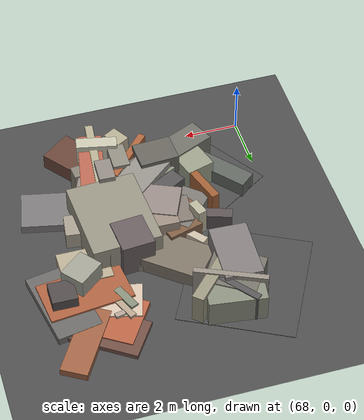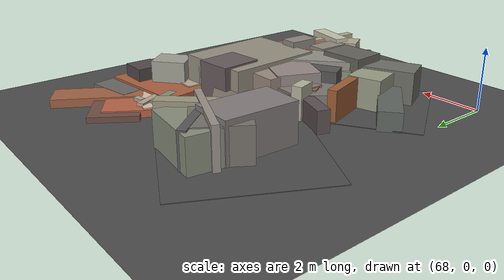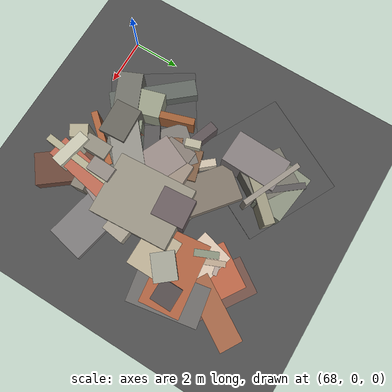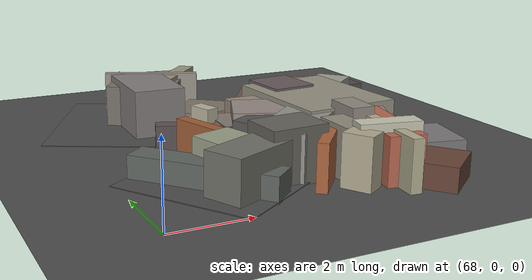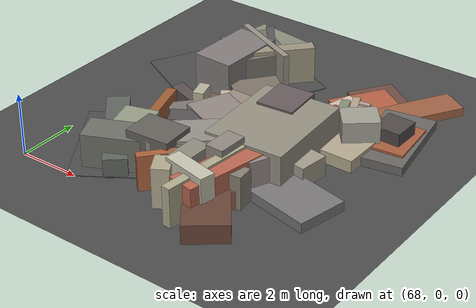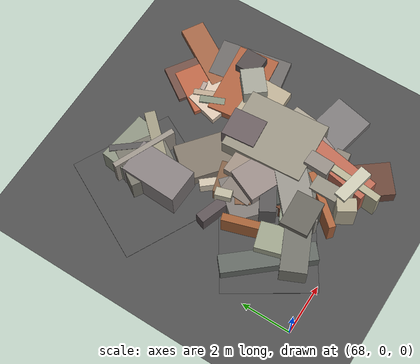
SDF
<sdf version="1.6">
 <world name="navitas_arena">
  <model name="ground_plane">
   <static>true</static>
   <link name="link">
    <collision name="collision">
     <geometry><plane><normal>0 0 1</normal><size>400 400</size></plane></geometry>
     <surface><friction><ode><mu>0.800</mu><mu2>0.800</mu2></ode></friction></surface>
    </collision>
    <visual name="visual">
     <cast_shadows>false</cast_shadows>
     <geometry><plane><normal>0 0 1</normal><size>400 400</size></plane></geometry>
     <material>
      <specular>0.04 0.04 0.04 1</specular>
      <script>
       <uri>file://media/materials/scripts/navitas_asphalt.material</uri>
       <name>Navitas/RealArenaAsphalt</name>
      </script>
     </material>
    </visual>
   </link>
  </model>
  <model name="road_zor_1_13">
   <static>true</static>
   <pose>70.612 2.500 0.040 0 0 2.140</pose>
   <link name="link">
    <collision name="col"><geometry><box><size>3.670 4.200 0.020</size></box></geometry></collision>
    <visual name="vis">
     <geometry><box><size>3.670 4.200 0.020</size></box></geometry>
     <material>
      <specular>0.04 0.04 0.04 1</specular>
      <script>
       <uri>file://media/materials/scripts/navitas_asphalt.material</uri>
       <name>Navitas/RealArenaAsphalt</name>
      </script>
     </material>
    </visual>
   </link>
  </model>
  <model name="road_zor_1_15">
   <static>true</static>
   <pose>70.080 7.566 0.040 0 0 1.093</pose>
   <link name="link">
    <collision name="col"><geometry><box><size>4.427 4.200 0.020</size></box></geometry></collision>
    <visual name="vis">
     <geometry><box><size>4.427 4.200 0.020</size></box></geometry>
     <material>
      <specular>0.04 0.04 0.04 1</specular>
      <script>
       <uri>file://media/materials/scripts/navitas_asphalt.material</uri>
       <name>Navitas/RealArenaAsphalt</name>
      </script>
     </material>
    </visual>
   </link>
  </model>
  <model name="blk_zor_1_2_0">
   <static>true</static>
   <pose>73.827 1.909 0.000 0 0 0</pose>
   <link name="link">
    <collision name="col_0">
     <pose>-0.726 0.303 0.378 0.000 0.000 1.106</pose>
     <geometry><box><size>0.576 0.401 0.756</size></box></geometry>
    </collision>
    <visual name="vis_0">
     <pose>-0.726 0.303 0.378 0.000 0.000 1.106</pose>
     <geometry><box><size>0.576 0.401 0.756</size></box></geometry>
     <material>
      <ambient>0.56 0.33 0.20 1</ambient>
      <diffuse>0.61 0.35 0.21 1</diffuse>
      <specular>0.05 0.05 0.045 1</specular>
     </material>
    </visual>
    <collision name="col_1">
     <pose>-0.059 0.319 0.734 0.000 0.000 -0.038</pose>
     <geometry><box><size>0.595 0.985 1.468</size></box></geometry>
    </collision>
    <visual name="vis_1">
     <pose>-0.059 0.319 0.734 0.000 0.000 -0.038</pose>
     <geometry><box><size>0.595 0.985 1.468</size></box></geometry>
     <material>
      <ambient>0.53 0.50 0.47 1</ambient>
      <diffuse>0.57 0.54 0.51 1</diffuse>
      <specular>0.05 0.05 0.045 1</specular>
     </material>
    </visual>
    <collision name="col_2">
     <pose>0.532 -0.220 0.495 0.000 0.000 -0.486</pose>
     <geometry><box><size>0.262 0.568 0.990</size></box></geometry>
    </collision>
    <visual name="vis_2">
     <pose>0.532 -0.220 0.495 0.000 0.000 -0.486</pose>
     <geometry><box><size>0.262 0.568 0.990</size></box></geometry>
     <material>
      <ambient>0.32 0.29 0.28 1</ambient>
      <diffuse>0.34 0.31 0.30 1</diffuse>
      <specular>0.05 0.05 0.045 1</specular>
     </material>
    </visual>
    <collision name="col_3">
     <pose>0.640 -0.385 0.286 0.000 0.000 0.891</pose>
     <geometry><box><size>0.583 0.529 0.572</size></box></geometry>
    </collision>
    <visual name="vis_3">
     <pose>0.640 -0.385 0.286 0.000 0.000 0.891</pose>
     <geometry><box><size>0.583 0.529 0.572</size></box></geometry>
     <material>
      <ambient>0.47 0.30 0.23 1</ambient>
      <diffuse>0.51 0.33 0.25 1</diffuse>
      <specular>0.05 0.05 0.045 1</specular>
     </material>
    </visual>
    <collision name="col_4">
     <pose>-0.120 -1.162 0.704 0.000 0.000 -0.210</pose>
     <geometry><box><size>1.509 0.487 1.408</size></box></geometry>
    </collision>
    <visual name="vis_4">
     <pose>-0.120 -1.162 0.704 0.000 0.000 -0.210</pose>
     <geometry><box><size>1.509 0.487 1.408</size></box></geometry>
     <material>
      <ambient>0.72 0.72 0.63 1</ambient>
      <diffuse>0.78 0.77 0.69 1</diffuse>
      <specular>0.05 0.05 0.045 1</specular>
     </material>
    </visual>
    <collision name="col_5">
     <pose>0.318 -0.171 0.593 0.000 0.000 1.379</pose>
     <geometry><box><size>3.248 0.887 1.186</size></box></geometry>
    </collision>
    <visual name="vis_5">
     <pose>0.318 -0.171 0.593 0.000 0.000 1.379</pose>
     <geometry><box><size>3.248 0.887 1.186</size></box></geometry>
     <material>
      <ambient>0.68 0.38 0.30 1</ambient>
      <diffuse>0.73 0.41 0.32 1</diffuse>
      <specular>0.05 0.05 0.045 1</specular>
     </material>
    </visual>
    <collision name="col_6">
     <pose>-1.061 -0.076 0.429 0.000 0.000 0.885</pose>
     <geometry><box><size>0.384 0.299 0.858</size></box></geometry>
    </collision>
    <visual name="vis_6">
     <pose>-1.061 -0.076 0.429 0.000 0.000 0.885</pose>
     <geometry><box><size>0.384 0.299 0.858</size></box></geometry>
     <material>
      <ambient>0.62 0.38 0.28 1</ambient>
      <diffuse>0.67 0.41 0.31 1</diffuse>
      <specular>0.05 0.05 0.045 1</specular>
     </material>
    </visual>
    <collision name="col_7">
     <pose>-0.821 0.701 0.402 0.000 0.000 -0.032</pose>
     <geometry><box><size>2.772 0.310 0.804</size></box></geometry>
    </collision>
    <visual name="vis_7">
     <pose>-0.821 0.701 0.402 0.000 0.000 -0.032</pose>
     <geometry><box><size>2.772 0.310 0.804</size></box></geometry>
     <material>
      <ambient>0.40 0.25 0.18 1</ambient>
      <diffuse>0.44 0.27 0.19 1</diffuse>
      <specular>0.05 0.05 0.045 1</specular>
     </material>
    </visual>
    <collision name="col_8">
     <pose>0.072 -0.756 0.630 0.000 0.000 1.465</pose>
     <geometry><box><size>2.996 0.288 1.260</size></box></geometry>
    </collision>
    <visual name="vis_8">
     <pose>0.072 -0.756 0.630 0.000 0.000 1.465</pose>
     <geometry><box><size>2.996 0.288 1.260</size></box></geometry>
     <material>
      <ambient>0.65 0.63 0.52 1</ambient>
      <diffuse>0.70 0.68 0.57 1</diffuse>
      <specular>0.05 0.05 0.045 1</specular>
     </material>
    </visual>
   </link>
  </model>
  <model name="blk_zor_1_2_1">
   <static>true</static>
   <pose>73.086 3.406 0.000 0 0 0</pose>
   <link name="link">
    <collision name="col_0">
     <pose>0.149 -0.498 0.608 0.000 0.000 1.429</pose>
     <geometry><box><size>0.306 0.584 1.216</size></box></geometry>
    </collision>
    <visual name="vis_0">
     <pose>0.149 -0.498 0.608 0.000 0.000 1.429</pose>
     <geometry><box><size>0.306 0.584 1.216</size></box></geometry>
     <material>
      <ambient>0.47 0.34 0.26 1</ambient>
      <diffuse>0.51 0.36 0.28 1</diffuse>
      <specular>0.05 0.05 0.045 1</specular>
     </material>
    </visual>
    <collision name="col_1">
     <pose>0.078 0.313 0.450 0.000 0.000 1.965</pose>
     <geometry><box><size>3.013 1.580 0.900</size></box></geometry>
    </collision>
    <visual name="vis_1">
     <pose>0.078 0.313 0.450 0.000 0.000 1.965</pose>
     <geometry><box><size>3.013 1.580 0.900</size></box></geometry>
     <material>
      <ambient>0.42 0.45 0.40 1</ambient>
      <diffuse>0.45 0.48 0.43 1</diffuse>
      <specular>0.05 0.05 0.045 1</specular>
     </material>
    </visual>
    <collision name="col_2">
     <pose>0.881 0.836 0.639 0.000 0.000 1.633</pose>
     <geometry><box><size>3.276 2.553 1.279</size></box></geometry>
    </collision>
    <visual name="vis_2">
     <pose>0.881 0.836 0.639 0.000 0.000 1.633</pose>
     <geometry><box><size>3.276 2.553 1.279</size></box></geometry>
     <material>
      <ambient>0.55 0.53 0.48 1</ambient>
      <diffuse>0.59 0.57 0.51 1</diffuse>
      <specular>0.05 0.05 0.045 1</specular>
     </material>
    </visual>
    <collision name="col_3">
     <pose>0.608 0.858 0.360 0.000 0.000 2.821</pose>
     <geometry><box><size>0.240 0.282 0.721</size></box></geometry>
    </collision>
    <visual name="vis_3">
     <pose>0.608 0.858 0.360 0.000 0.000 2.821</pose>
     <geometry><box><size>0.240 0.282 0.721</size></box></geometry>
     <material>
      <ambient>0.70 0.67 0.57 1</ambient>
      <diffuse>0.75 0.72 0.62 1</diffuse>
      <specular>0.05 0.05 0.045 1</specular>
     </material>
    </visual>
    <collision name="col_4">
     <pose>0.054 0.892 0.361 0.000 0.000 3.514</pose>
     <geometry><box><size>2.496 1.446 0.723</size></box></geometry>
    </collision>
    <visual name="vis_4">
     <pose>0.054 0.892 0.361 0.000 0.000 3.514</pose>
     <geometry><box><size>2.496 1.446 0.723</size></box></geometry>
     <material>
      <ambient>0.62 0.37 0.21 1</ambient>
      <diffuse>0.67 0.40 0.23 1</diffuse>
      <specular>0.05 0.05 0.045 1</specular>
     </material>
    </visual>
    <collision name="col_5">
     <pose>-0.802 0.845 0.404 0.000 0.000 3.071</pose>
     <geometry><box><size>2.305 1.239 0.807</size></box></geometry>
    </collision>
    <visual name="vis_5">
     <pose>-0.802 0.845 0.404 0.000 0.000 3.071</pose>
     <geometry><box><size>2.305 1.239 0.807</size></box></geometry>
     <material>
      <ambient>0.48 0.44 0.41 1</ambient>
      <diffuse>0.52 0.48 0.45 1</diffuse>
      <specular>0.05 0.05 0.045 1</specular>
     </material>
    </visual>
    <collision name="col_6">
     <pose>0.183 0.083 0.576 0.000 0.000 2.726</pose>
     <geometry><box><size>3.802 1.409 1.151</size></box></geometry>
    </collision>
    <visual name="vis_6">
     <pose>0.183 0.083 0.576 0.000 0.000 2.726</pose>
     <geometry><box><size>3.802 1.409 1.151</size></box></geometry>
     <material>
      <ambient>0.55 0.50 0.48 1</ambient>
      <diffuse>0.59 0.54 0.52 1</diffuse>
      <specular>0.05 0.05 0.045 1</specular>
     </material>
    </visual>
    <collision name="col_7">
     <pose>0.385 0.795 0.452 0.000 0.000 3.602</pose>
     <geometry><box><size>0.831 1.233 0.905</size></box></geometry>
    </collision>
    <visual name="vis_7">
     <pose>0.385 0.795 0.452 0.000 0.000 3.602</pose>
     <geometry><box><size>0.831 1.233 0.905</size></box></geometry>
     <material>
      <ambient>0.51 0.47 0.47 1</ambient>
      <diffuse>0.55 0.50 0.51 1</diffuse>
      <specular>0.05 0.05 0.045 1</specular>
     </material>
    </visual>
   </link>
  </model>
  <model name="blk_zor_1_2_3">
   <static>true</static>
   <pose>72.488 4.093 0.000 0 0 0</pose>
   <link name="link">
    <collision name="col_0">
     <pose>0.279 1.565 0.298 0.000 0.000 2.459</pose>
     <geometry><box><size>3.876 1.556 0.596</size></box></geometry>
    </collision>
    <visual name="vis_0">
     <pose>0.279 1.565 0.298 0.000 0.000 2.459</pose>
     <geometry><box><size>3.876 1.556 0.596</size></box></geometry>
     <material>
      <ambient>0.46 0.43 0.38 1</ambient>
      <diffuse>0.50 0.46 0.41 1</diffuse>
      <specular>0.05 0.05 0.045 1</specular>
     </material>
    </visual>
    <collision name="col_1">
     <pose>0.187 -0.713 0.481 0.000 0.000 0.758</pose>
     <geometry><box><size>2.272 1.638 0.961</size></box></geometry>
    </collision>
    <visual name="vis_1">
     <pose>0.187 -0.713 0.481 0.000 0.000 0.758</pose>
     <geometry><box><size>2.272 1.638 0.961</size></box></geometry>
     <material>
      <ambient>0.27 0.28 0.26 1</ambient>
      <diffuse>0.29 0.31 0.29 1</diffuse>
      <specular>0.05 0.05 0.045 1</specular>
     </material>
    </visual>
    <collision name="col_2">
     <pose>-1.524 0.587 0.555 0.000 0.000 1.876</pose>
     <geometry><box><size>0.639 0.339 1.111</size></box></geometry>
    </collision>
    <visual name="vis_2">
     <pose>-1.524 0.587 0.555 0.000 0.000 1.876</pose>
     <geometry><box><size>0.639 0.339 1.111</size></box></geometry>
     <material>
      <ambient>0.66 0.64 0.56 1</ambient>
      <diffuse>0.72 0.70 0.61 1</diffuse>
      <specular>0.05 0.05 0.045 1</specular>
     </material>
    </visual>
    <collision name="col_3">
     <pose>1.102 1.308 0.671 0.000 0.000 1.657</pose>
     <geometry><box><size>1.360 1.208 1.343</size></box></geometry>
    </collision>
    <visual name="vis_3">
     <pose>1.102 1.308 0.671 0.000 0.000 1.657</pose>
     <geometry><box><size>1.360 1.208 1.343</size></box></geometry>
     <material>
      <ambient>0.38 0.34 0.34 1</ambient>
      <diffuse>0.41 0.36 0.37 1</diffuse>
      <specular>0.05 0.05 0.045 1</specular>
     </material>
    </visual>
    <collision name="col_4">
     <pose>-1.372 0.400 0.360 0.000 0.000 2.809</pose>
     <geometry><box><size>2.904 0.417 0.720</size></box></geometry>
    </collision>
    <visual name="vis_4">
     <pose>-1.372 0.400 0.360 0.000 0.000 2.809</pose>
     <geometry><box><size>2.904 0.417 0.720</size></box></geometry>
     <material>
      <ambient>0.33 0.30 0.30 1</ambient>
      <diffuse>0.36 0.32 0.33 1</diffuse>
      <specular>0.05 0.05 0.045 1</specular>
     </material>
    </visual>
    <collision name="col_5">
     <pose>-0.716 -0.858 0.556 0.000 0.000 0.513</pose>
     <geometry><box><size>1.379 0.635 1.112</size></box></geometry>
    </collision>
    <visual name="vis_5">
     <pose>-0.716 -0.858 0.556 0.000 0.000 0.513</pose>
     <geometry><box><size>1.379 0.635 1.112</size></box></geometry>
     <material>
      <ambient>0.31 0.31 0.30 1</ambient>
      <diffuse>0.34 0.33 0.33 1</diffuse>
      <specular>0.05 0.05 0.045 1</specular>
     </material>
    </visual>
    <collision name="col_6">
     <pose>-0.645 0.713 0.277 0.000 0.000 2.269</pose>
     <geometry><box><size>2.603 0.314 0.554</size></box></geometry>
    </collision>
    <visual name="vis_6">
     <pose>-0.645 0.713 0.277 0.000 0.000 2.269</pose>
     <geometry><box><size>2.603 0.314 0.554</size></box></geometry>
     <material>
      <ambient>0.73 0.68 0.61 1</ambient>
      <diffuse>0.79 0.74 0.66 1</diffuse>
      <specular>0.05 0.05 0.045 1</specular>
     </material>
    </visual>
    <collision name="col_7">
     <pose>-0.185 0.766 0.557 0.000 0.000 3.122</pose>
     <geometry><box><size>1.057 0.667 1.114</size></box></geometry>
    </collision>
    <visual name="vis_7">
     <pose>-0.185 0.766 0.557 0.000 0.000 3.122</pose>
     <geometry><box><size>1.057 0.667 1.114</size></box></geometry>
     <material>
      <ambient>0.56 0.51 0.46 1</ambient>
      <diffuse>0.61 0.55 0.50 1</diffuse>
      <specular>0.05 0.05 0.045 1</specular>
     </material>
    </visual>
    <collision name="col_8">
     <pose>1.153 1.278 0.499 0.000 0.000 0.407</pose>
     <geometry><box><size>2.112 0.298 0.998</size></box></geometry>
    </collision>
    <visual name="vis_8">
     <pose>1.153 1.278 0.499 0.000 0.000 0.407</pose>
     <geometry><box><size>2.112 0.298 0.998</size></box></geometry>
     <material>
      <ambient>0.69 0.67 0.58 1</ambient>
      <diffuse>0.74 0.73 0.63 1</diffuse>
      <specular>0.05 0.05 0.045 1</specular>
     </material>
    </visual>
   </link>
  </model>
  <model name="blk_zor_1_2_4">
   <static>true</static>
   <pose>73.724 1.898 0.000 0 0 0</pose>
   <link name="link">
    <collision name="col_0">
     <pose>0.582 -0.238 0.538 0.000 0.000 3.247</pose>
     <geometry><box><size>1.125 0.548 1.076</size></box></geometry>
    </collision>
    <visual name="vis_0">
     <pose>0.582 -0.238 0.538 0.000 0.000 3.247</pose>
     <geometry><box><size>1.125 0.548 1.076</size></box></geometry>
     <material>
      <ambient>0.49 0.47 0.41 1</ambient>
      <diffuse>0.53 0.50 0.45 1</diffuse>
      <specular>0.05 0.05 0.045 1</specular>
     </material>
    </visual>
    <collision name="col_1">
     <pose>-2.005 -0.141 0.681 0.000 0.000 3.201</pose>
     <geometry><box><size>1.450 1.118 1.362</size></box></geometry>
    </collision>
    <visual name="vis_1">
     <pose>-2.005 -0.141 0.681 0.000 0.000 3.201</pose>
     <geometry><box><size>1.450 1.118 1.362</size></box></geometry>
     <material>
      <ambient>0.37 0.36 0.33 1</ambient>
      <diffuse>0.40 0.39 0.36 1</diffuse>
      <specular>0.05 0.05 0.045 1</specular>
     </material>
    </visual>
    <collision name="col_2">
     <pose>0.771 1.256 0.465 0.000 0.000 3.390</pose>
     <geometry><box><size>0.596 0.398 0.931</size></box></geometry>
    </collision>
    <visual name="vis_2">
     <pose>0.771 1.256 0.465 0.000 0.000 3.390</pose>
     <geometry><box><size>0.596 0.398 0.931</size></box></geometry>
     <material>
      <ambient>0.46 0.49 0.43 1</ambient>
      <diffuse>0.50 0.53 0.47 1</diffuse>
      <specular>0.05 0.05 0.045 1</specular>
     </material>
    </visual>
    <collision name="col_3">
     <pose>-1.263 0.610 0.603 0.000 0.000 3.856</pose>
     <geometry><box><size>2.821 1.212 1.205</size></box></geometry>
    </collision>
    <visual name="vis_3">
     <pose>-1.263 0.610 0.603 0.000 0.000 3.856</pose>
     <geometry><box><size>2.821 1.212 1.205</size></box></geometry>
     <material>
      <ambient>0.54 0.53 0.50 1</ambient>
      <diffuse>0.58 0.57 0.54 1</diffuse>
      <specular>0.05 0.05 0.045 1</specular>
     </material>
    </visual>
    <collision name="col_4">
     <pose>-0.826 -1.353 0.643 0.000 0.000 2.104</pose>
     <geometry><box><size>0.741 0.538 1.287</size></box></geometry>
    </collision>
    <visual name="vis_4">
     <pose>-0.826 -1.353 0.643 0.000 0.000 2.104</pose>
     <geometry><box><size>0.741 0.538 1.287</size></box></geometry>
     <material>
      <ambient>0.65 0.62 0.53 1</ambient>
      <diffuse>0.70 0.67 0.57 1</diffuse>
      <specular>0.05 0.05 0.045 1</specular>
     </material>
    </visual>
    <collision name="col_5">
     <pose>-1.054 -0.452 0.574 0.000 0.000 3.995</pose>
     <geometry><box><size>2.328 0.266 1.148</size></box></geometry>
    </collision>
    <visual name="vis_5">
     <pose>-1.054 -0.452 0.574 0.000 0.000 3.995</pose>
     <geometry><box><size>2.328 0.266 1.148</size></box></geometry>
     <material>
      <ambient>0.62 0.36 0.23 1</ambient>
      <diffuse>0.67 0.39 0.24 1</diffuse>
      <specular>0.05 0.05 0.045 1</specular>
     </material>
    </visual>
    <collision name="col_6">
     <pose>-0.325 0.763 0.518 0.000 0.000 3.254</pose>
     <geometry><box><size>0.490 0.557 1.037</size></box></geometry>
    </collision>
    <visual name="vis_6">
     <pose>-0.325 0.763 0.518 0.000 0.000 3.254</pose>
     <geometry><box><size>0.490 0.557 1.037</size></box></geometry>
     <material>
      <ambient>0.63 0.38 0.27 1</ambient>
      <diffuse>0.68 0.41 0.29 1</diffuse>
      <specular>0.05 0.05 0.045 1</specular>
     </material>
    </visual>
    <collision name="col_7">
     <pose>-0.652 -0.386 0.637 0.000 0.000 1.559</pose>
     <geometry><box><size>1.101 0.628 1.274</size></box></geometry>
    </collision>
    <visual name="vis_7">
     <pose>-0.652 -0.386 0.637 0.000 0.000 1.559</pose>
     <geometry><box><size>1.101 0.628 1.274</size></box></geometry>
     <material>
      <ambient>0.52 0.51 0.47 1</ambient>
      <diffuse>0.57 0.55 0.50 1</diffuse>
      <specular>0.05 0.05 0.045 1</specular>
     </material>
    </visual>
    <collision name="col_8">
     <pose>0.435 -1.025 0.301 0.000 0.000 2.228</pose>
     <geometry><box><size>3.028 1.347 0.601</size></box></geometry>
    </collision>
    <visual name="vis_8">
     <pose>0.435 -1.025 0.301 0.000 0.000 2.228</pose>
     <geometry><box><size>3.028 1.347 0.601</size></box></geometry>
     <material>
      <ambient>0.38 0.25 0.21 1</ambient>
      <diffuse>0.41 0.27 0.22 1</diffuse>
      <specular>0.05 0.05 0.045 1</specular>
     </material>
    </visual>
   </link>
  </model>
  <model name="blk_zor_1_2_5">
   <static>true</static>
   <pose>70.920 3.139 0.000 0 0 0</pose>
   <link name="link">
    <collision name="col_0">
     <pose>0.860 -1.277 0.557 0.000 0.000 3.564</pose>
     <geometry><box><size>4.631 1.015 1.114</size></box></geometry>
    </collision>
    <visual name="vis_0">
     <pose>0.860 -1.277 0.557 0.000 0.000 3.564</pose>
     <geometry><box><size>4.631 1.015 1.114</size></box></geometry>
     <material>
      <ambient>0.41 0.41 0.38 1</ambient>
      <diffuse>0.44 0.44 0.41 1</diffuse>
      <specular>0.05 0.05 0.045 1</specular>
     </material>
    </visual>
    <collision name="col_1">
     <pose>-1.084 -1.104 0.309 0.000 0.000 2.275</pose>
     <geometry><box><size>3.672 0.725 0.617</size></box></geometry>
    </collision>
    <visual name="vis_1">
     <pose>-1.084 -1.104 0.309 0.000 0.000 2.275</pose>
     <geometry><box><size>3.672 0.725 0.617</size></box></geometry>
     <material>
      <ambient>0.35 0.37 0.36 1</ambient>
      <diffuse>0.38 0.40 0.38 1</diffuse>
      <specular>0.05 0.05 0.045 1</specular>
     </material>
    </visual>
    <collision name="col_2">
     <pose>-0.135 -1.723 0.336 0.000 0.000 2.097</pose>
     <geometry><box><size>0.627 0.274 0.672</size></box></geometry>
    </collision>
    <visual name="vis_2">
     <pose>-0.135 -1.723 0.336 0.000 0.000 2.097</pose>
     <geometry><box><size>0.627 0.274 0.672</size></box></geometry>
     <material>
      <ambient>0.57 0.35 0.22 1</ambient>
      <diffuse>0.62 0.37 0.24 1</diffuse>
      <specular>0.05 0.05 0.045 1</specular>
     </material>
    </visual>
    <collision name="col_3">
     <pose>0.550 -0.854 0.463 0.000 0.000 3.590</pose>
     <geometry><box><size>0.498 0.451 0.926</size></box></geometry>
    </collision>
    <visual name="vis_3">
     <pose>0.550 -0.854 0.463 0.000 0.000 3.590</pose>
     <geometry><box><size>0.498 0.451 0.926</size></box></geometry>
     <material>
      <ambient>0.50 0.53 0.46 1</ambient>
      <diffuse>0.54 0.57 0.49 1</diffuse>
      <specular>0.05 0.05 0.045 1</specular>
     </material>
    </visual>
    <collision name="col_4">
     <pose>0.866 0.598 0.370 0.000 0.000 2.418</pose>
     <geometry><box><size>2.477 1.808 0.740</size></box></geometry>
    </collision>
    <visual name="vis_4">
     <pose>0.866 0.598 0.370 0.000 0.000 2.418</pose>
     <geometry><box><size>2.477 1.808 0.740</size></box></geometry>
     <material>
      <ambient>0.45 0.44 0.41 1</ambient>
      <diffuse>0.49 0.47 0.45 1</diffuse>
      <specular>0.05 0.05 0.045 1</specular>
     </material>
    </visual>
    <collision name="col_5">
     <pose>-0.469 0.147 0.515 0.000 0.000 1.874</pose>
     <geometry><box><size>2.025 0.300 1.029</size></box></geometry>
    </collision>
    <visual name="vis_5">
     <pose>-0.469 0.147 0.515 0.000 0.000 1.874</pose>
     <geometry><box><size>2.025 0.300 1.029</size></box></geometry>
     <material>
      <ambient>0.57 0.34 0.19 1</ambient>
      <diffuse>0.62 0.37 0.21 1</diffuse>
      <specular>0.05 0.05 0.045 1</specular>
     </material>
    </visual>
    <collision name="col_6">
     <pose>0.869 1.413 0.366 0.000 0.000 1.849</pose>
     <geometry><box><size>1.640 1.309 0.732</size></box></geometry>
    </collision>
    <visual name="vis_6">
     <pose>0.869 1.413 0.366 0.000 0.000 1.849</pose>
     <geometry><box><size>1.640 1.309 0.732</size></box></geometry>
     <material>
      <ambient>0.46 0.34 0.25 1</ambient>
      <diffuse>0.50 0.37 0.27 1</diffuse>
      <specular>0.05 0.05 0.045 1</specular>
     </material>
    </visual>
    <collision name="col_7">
     <pose>-0.506 -0.912 0.525 0.000 0.000 1.857</pose>
     <geometry><box><size>1.144 1.077 1.049</size></box></geometry>
    </collision>
    <visual name="vis_7">
     <pose>-0.506 -0.912 0.525 0.000 0.000 1.857</pose>
     <geometry><box><size>1.144 1.077 1.049</size></box></geometry>
     <material>
      <ambient>0.55 0.58 0.49 1</ambient>
      <diffuse>0.60 0.62 0.53 1</diffuse>
      <specular>0.05 0.05 0.045 1</specular>
     </material>
    </visual>
    <collision name="col_8">
     <pose>0.437 0.938 0.392 0.000 0.000 3.670</pose>
     <geometry><box><size>0.715 0.599 0.784</size></box></geometry>
    </collision>
    <visual name="vis_8">
     <pose>0.437 0.938 0.392 0.000 0.000 3.670</pose>
     <geometry><box><size>0.715 0.599 0.784</size></box></geometry>
     <material>
      <ambient>0.49 0.35 0.25 1</ambient>
      <diffuse>0.52 0.38 0.28 1</diffuse>
      <specular>0.05 0.05 0.045 1</specular>
     </material>
    </visual>
   </link>
  </model>
  <model name="blk_zor_1_3_4">
   <static>true</static>
   <pose>70.668 7.672 0.000 0 0 0</pose>
   <link name="link">
    <collision name="col_0">
     <pose>0.366 0.493 0.462 0.000 0.000 0.556</pose>
     <geometry><box><size>0.564 0.331 0.925</size></box></geometry>
    </collision>
    <visual name="vis_0">
     <pose>0.366 0.493 0.462 0.000 0.000 0.556</pose>
     <geometry><box><size>0.564 0.331 0.925</size></box></geometry>
     <material>
      <ambient>0.39 0.36 0.37 1</ambient>
      <diffuse>0.42 0.39 0.40 1</diffuse>
      <specular>0.05 0.05 0.045 1</specular>
     </material>
    </visual>
    <collision name="col_1">
     <pose>-0.323 -0.488 0.659 0.000 0.000 1.530</pose>
     <geometry><box><size>2.316 1.379 1.318</size></box></geometry>
    </collision>
    <visual name="vis_1">
     <pose>-0.323 -0.488 0.659 0.000 0.000 1.530</pose>
     <geometry><box><size>2.316 1.379 1.318</size></box></geometry>
     <material>
      <ambient>0.48 0.45 0.45 1</ambient>
      <diffuse>0.52 0.49 0.49 1</diffuse>
      <specular>0.05 0.05 0.045 1</specular>
     </material>
    </visual>
    <collision name="col_2">
     <pose>0.154 0.988 0.558 0.000 0.000 -0.133</pose>
     <geometry><box><size>2.068 1.228 1.116</size></box></geometry>
    </collision>
    <visual name="vis_2">
     <pose>0.154 0.988 0.558 0.000 0.000 -0.133</pose>
     <geometry><box><size>2.068 1.228 1.116</size></box></geometry>
     <material>
      <ambient>0.50 0.52 0.45 1</ambient>
      <diffuse>0.54 0.56 0.49 1</diffuse>
      <specular>0.05 0.05 0.045 1</specular>
     </material>
    </visual>
    <collision name="col_3">
     <pose>0.056 0.953 0.583 0.000 0.000 -0.901</pose>
     <geometry><box><size>1.771 0.255 1.166</size></box></geometry>
    </collision>
    <visual name="vis_3">
     <pose>0.056 0.953 0.583 0.000 0.000 -0.901</pose>
     <geometry><box><size>1.771 0.255 1.166</size></box></geometry>
     <material>
      <ambient>0.33 0.32 0.31 1</ambient>
      <diffuse>0.35 0.34 0.34 1</diffuse>
      <specular>0.05 0.05 0.045 1</specular>
     </material>
    </visual>
    <collision name="col_4">
     <pose>0.168 0.485 0.661 0.000 0.000 -0.419</pose>
     <geometry><box><size>2.624 0.208 1.323</size></box></geometry>
    </collision>
    <visual name="vis_4">
     <pose>0.168 0.485 0.661 0.000 0.000 -0.419</pose>
     <geometry><box><size>2.624 0.208 1.323</size></box></geometry>
     <material>
      <ambient>0.56 0.53 0.49 1</ambient>
      <diffuse>0.60 0.57 0.53 1</diffuse>
      <specular>0.05 0.05 0.045 1</specular>
     </material>
    </visual>
    <collision name="col_5">
     <pose>-0.089 0.225 0.576 0.000 0.000 -0.570</pose>
     <geometry><box><size>1.875 1.657 1.152</size></box></geometry>
    </collision>
    <visual name="vis_5">
     <pose>-0.089 0.225 0.576 0.000 0.000 -0.570</pose>
     <geometry><box><size>1.875 1.657 1.152</size></box></geometry>
     <material>
      <ambient>0.43 0.42 0.38 1</ambient>
      <diffuse>0.46 0.45 0.41 1</diffuse>
      <specular>0.05 0.05 0.045 1</specular>
     </material>
    </visual>
    <collision name="col_6">
     <pose>0.893 0.451 0.634 0.000 0.000 0.822</pose>
     <geometry><box><size>2.006 0.428 1.268</size></box></geometry>
    </collision>
    <visual name="vis_6">
     <pose>0.893 0.451 0.634 0.000 0.000 0.822</pose>
     <geometry><box><size>2.006 0.428 1.268</size></box></geometry>
     <material>
      <ambient>0.57 0.54 0.46 1</ambient>
      <diffuse>0.61 0.59 0.50 1</diffuse>
      <specular>0.05 0.05 0.045 1</specular>
     </material>
    </visual>
   </link>
  </model>
  <model name="deb_zor_57">
   <static>true</static>
   <pose>73.732 4.513 0.000 0 0 0</pose>
   <link name="link">
    <collision name="col_0">
     <pose>-0.702 -0.547 0.063 0.000 0.000 0.175</pose>
     <geometry><box><size>1.012 0.271 0.127</size></box></geometry>
    </collision>
    <visual name="vis_0">
     <pose>-0.702 -0.547 0.063 0.000 0.000 0.175</pose>
     <geometry><box><size>1.012 0.271 0.127</size></box></geometry>
     <material>
      <ambient>0.46 0.47 0.42 1</ambient>
      <diffuse>0.50 0.51 0.45 1</diffuse>
      <specular>0.05 0.05 0.045 1</specular>
     </material>
    </visual>
    <collision name="col_1">
     <pose>-0.641 -0.053 0.131 0.000 0.000 1.804</pose>
     <geometry><box><size>0.468 0.317 0.263</size></box></geometry>
    </collision>
    <visual name="vis_1">
     <pose>-0.641 -0.053 0.131 0.000 0.000 1.804</pose>
     <geometry><box><size>0.468 0.317 0.263</size></box></geometry>
     <material>
      <ambient>0.66 0.39 0.29 1</ambient>
      <diffuse>0.71 0.43 0.31 1</diffuse>
      <specular>0.05 0.05 0.045 1</specular>
     </material>
    </visual>
    <collision name="col_2">
     <pose>-0.234 0.961 0.117 0.000 0.000 -0.286</pose>
     <geometry><box><size>2.075 1.218 0.234</size></box></geometry>
    </collision>
    <visual name="vis_2">
     <pose>-0.234 0.961 0.117 0.000 0.000 -0.286</pose>
     <geometry><box><size>2.075 1.218 0.234</size></box></geometry>
     <material>
      <ambient>0.50 0.48 0.45 1</ambient>
      <diffuse>0.54 0.52 0.48 1</diffuse>
      <specular>0.05 0.05 0.045 1</specular>
     </material>
    </visual>
    <collision name="col_3">
     <pose>-0.099 0.009 0.528 0.000 0.000 0.237</pose>
     <geometry><box><size>0.722 0.707 1.056</size></box></geometry>
    </collision>
    <visual name="vis_3">
     <pose>-0.099 0.009 0.528 0.000 0.000 0.237</pose>
     <geometry><box><size>0.722 0.707 1.056</size></box></geometry>
     <material>
      <ambient>0.39 0.28 0.22 1</ambient>
      <diffuse>0.42 0.31 0.24 1</diffuse>
      <specular>0.05 0.05 0.045 1</specular>
     </material>
    </visual>
    <collision name="col_4">
     <pose>-0.568 0.470 0.112 0.000 0.000 0.109</pose>
     <geometry><box><size>1.256 0.132 0.224</size></box></geometry>
    </collision>
    <visual name="vis_4">
     <pose>-0.568 0.470 0.112 0.000 0.000 0.109</pose>
     <geometry><box><size>1.256 0.132 0.224</size></box></geometry>
     <material>
      <ambient>0.70 0.64 0.57 1</ambient>
      <diffuse>0.76 0.69 0.62 1</diffuse>
      <specular>0.05 0.05 0.045 1</specular>
     </material>
    </visual>
    <collision name="col_5">
     <pose>0.662 0.058 0.138 0.000 0.000 -0.562</pose>
     <geometry><box><size>0.288 0.280 0.276</size></box></geometry>
    </collision>
    <visual name="vis_5">
     <pose>0.662 0.058 0.138 0.000 0.000 -0.562</pose>
     <geometry><box><size>0.288 0.280 0.276</size></box></geometry>
     <material>
      <ambient>0.61 0.36 0.25 1</ambient>
      <diffuse>0.66 0.39 0.27 1</diffuse>
      <specular>0.05 0.05 0.045 1</specular>
     </material>
    </visual>
    <collision name="col_6">
     <pose>-0.505 -0.069 0.097 0.000 0.000 2.012</pose>
     <geometry><box><size>0.211 0.247 0.193</size></box></geometry>
    </collision>
    <visual name="vis_6">
     <pose>-0.505 -0.069 0.097 0.000 0.000 2.012</pose>
     <geometry><box><size>0.211 0.247 0.193</size></box></geometry>
     <material>
      <ambient>0.45 0.34 0.27 1</ambient>
      <diffuse>0.49 0.37 0.29 1</diffuse>
      <specular>0.05 0.05 0.045 1</specular>
     </material>
    </visual>
   </link>
  </model>
  <model name="deb_zor_70">
   <static>true</static>
   <pose>75.101 6.501 0.000 0 0 0</pose>
   <link name="link">
    <collision name="col_0">
     <pose>-0.169 -0.063 0.156 0.000 0.000 0.767</pose>
     <geometry><box><size>1.188 0.187 0.311</size></box></geometry>
    </collision>
    <visual name="vis_0">
     <pose>-0.169 -0.063 0.156 0.000 0.000 0.767</pose>
     <geometry><box><size>1.188 0.187 0.311</size></box></geometry>
     <material>
      <ambient>0.37 0.34 0.35 1</ambient>
      <diffuse>0.40 0.37 0.38 1</diffuse>
      <specular>0.05 0.05 0.045 1</specular>
     </material>
    </visual>
    <collision name="col_1">
     <pose>-0.427 0.862 0.135 0.000 0.000 1.309</pose>
     <geometry><box><size>1.429 1.720 0.270</size></box></geometry>
    </collision>
    <visual name="vis_1">
     <pose>-0.427 0.862 0.135 0.000 0.000 1.309</pose>
     <geometry><box><size>1.429 1.720 0.270</size></box></geometry>
     <material>
      <ambient>0.78 0.70 0.63 1</ambient>
      <diffuse>0.84 0.76 0.68 1</diffuse>
      <specular>0.05 0.05 0.045 1</specular>
     </material>
    </visual>
    <collision name="col_2">
     <pose>0.562 -0.257 0.536 0.000 0.000 0.686</pose>
     <geometry><box><size>1.137 0.942 1.071</size></box></geometry>
    </collision>
    <visual name="vis_2">
     <pose>0.562 -0.257 0.536 0.000 0.000 0.686</pose>
     <geometry><box><size>1.137 0.942 1.071</size></box></geometry>
     <material>
      <ambient>0.58 0.59 0.54 1</ambient>
      <diffuse>0.63 0.63 0.58 1</diffuse>
      <specular>0.05 0.05 0.045 1</specular>
     </material>
    </visual>
    <collision name="col_3">
     <pose>0.310 -0.902 0.200 0.000 0.000 1.567</pose>
     <geometry><box><size>1.489 1.766 0.401</size></box></geometry>
    </collision>
    <visual name="vis_3">
     <pose>0.310 -0.902 0.200 0.000 0.000 1.567</pose>
     <geometry><box><size>1.489 1.766 0.401</size></box></geometry>
     <material>
      <ambient>0.66 0.62 0.53 1</ambient>
      <diffuse>0.72 0.67 0.57 1</diffuse>
      <specular>0.05 0.05 0.045 1</specular>
     </material>
    </visual>
   </link>
  </model>
  <model name="deb_zor_115">
   <static>true</static>
   <pose>76.034 7.630 0.000 0 0 0</pose>
   <link name="link">
    <collision name="col_0">
     <pose>-0.666 0.787 0.092 0.000 0.000 2.549</pose>
     <geometry><box><size>2.808 1.553 0.185</size></box></geometry>
    </collision>
    <visual name="vis_0">
     <pose>-0.666 0.787 0.092 0.000 0.000 2.549</pose>
     <geometry><box><size>2.808 1.553 0.185</size></box></geometry>
     <material>
      <ambient>0.41 0.29 0.25 1</ambient>
      <diffuse>0.44 0.31 0.27 1</diffuse>
      <specular>0.05 0.05 0.045 1</specular>
     </material>
    </visual>
    <collision name="col_1">
     <pose>0.119 1.118 0.138 0.000 0.000 1.026</pose>
     <geometry><box><size>2.855 0.977 0.277</size></box></geometry>
    </collision>
    <visual name="vis_1">
     <pose>0.119 1.118 0.138 0.000 0.000 1.026</pose>
     <geometry><box><size>2.855 0.977 0.277</size></box></geometry>
     <material>
      <ambient>0.59 0.36 0.25 1</ambient>
      <diffuse>0.63 0.39 0.27 1</diffuse>
      <specular>0.05 0.05 0.045 1</specular>
     </material>
    </visual>
    <collision name="col_2">
     <pose>0.460 -0.731 0.142 0.000 0.000 1.746</pose>
     <geometry><box><size>2.957 1.637 0.285</size></box></geometry>
    </collision>
    <visual name="vis_2">
     <pose>0.460 -0.731 0.142 0.000 0.000 1.746</pose>
     <geometry><box><size>2.957 1.637 0.285</size></box></geometry>
     <material>
      <ambient>0.39 0.38 0.37 1</ambient>
      <diffuse>0.42 0.41 0.40 1</diffuse>
      <specular>0.05 0.05 0.045 1</specular>
     </material>
    </visual>
    <collision name="col_3">
     <pose>-0.473 -0.761 0.103 0.000 0.000 1.503</pose>
     <geometry><box><size>1.206 0.298 0.205</size></box></geometry>
    </collision>
    <visual name="vis_3">
     <pose>-0.473 -0.761 0.103 0.000 0.000 1.503</pose>
     <geometry><box><size>1.206 0.298 0.205</size></box></geometry>
     <material>
      <ambient>0.43 0.44 0.39 1</ambient>
      <diffuse>0.47 0.48 0.43 1</diffuse>
      <specular>0.05 0.05 0.045 1</specular>
     </material>
    </visual>
    <collision name="col_4">
     <pose>-0.323 -0.203 0.108 0.000 0.000 1.830</pose>
     <geometry><box><size>1.547 0.776 0.217</size></box></geometry>
    </collision>
    <visual name="vis_4">
     <pose>-0.323 -0.203 0.108 0.000 0.000 1.830</pose>
     <geometry><box><size>1.547 0.776 0.217</size></box></geometry>
     <material>
      <ambient>0.43 0.40 0.40 1</ambient>
      <diffuse>0.47 0.44 0.43 1</diffuse>
      <specular>0.05 0.05 0.045 1</specular>
     </material>
    </visual>
    <collision name="col_5">
     <pose>-0.362 -0.919 0.179 0.000 0.000 0.113</pose>
     <geometry><box><size>3.076 1.708 0.358</size></box></geometry>
    </collision>
    <visual name="vis_5">
     <pose>-0.362 -0.919 0.179 0.000 0.000 0.113</pose>
     <geometry><box><size>3.076 1.708 0.358</size></box></geometry>
     <material>
      <ambient>0.62 0.35 0.23 1</ambient>
      <diffuse>0.67 0.38 0.25 1</diffuse>
      <specular>0.05 0.05 0.045 1</specular>
     </material>
    </visual>
    <collision name="col_6">
     <pose>0.456 -0.781 0.389 0.000 0.000 1.561</pose>
     <geometry><box><size>0.917 0.912 0.778</size></box></geometry>
    </collision>
    <visual name="vis_6">
     <pose>0.456 -0.781 0.389 0.000 0.000 1.561</pose>
     <geometry><box><size>0.917 0.912 0.778</size></box></geometry>
     <material>
      <ambient>0.30 0.27 0.27 1</ambient>
      <diffuse>0.32 0.29 0.29 1</diffuse>
      <specular>0.05 0.05 0.045 1</specular>
     </material>
    </visual>
   </link>
  </model>
  <model name="deb_zor_190">
   <static>true</static>
   <pose>74.784 7.807 0.000 0 0 0</pose>
   <link name="link">
    <collision name="col_0">
     <pose>-0.056 0.343 0.115 0.000 0.000 0.993</pose>
     <geometry><box><size>1.963 1.404 0.229</size></box></geometry>
    </collision>
    <visual name="vis_0">
     <pose>-0.056 0.343 0.115 0.000 0.000 0.993</pose>
     <geometry><box><size>1.963 1.404 0.229</size></box></geometry>
     <material>
      <ambient>0.66 0.37 0.25 1</ambient>
      <diffuse>0.72 0.39 0.27 1</diffuse>
      <specular>0.05 0.05 0.045 1</specular>
     </material>
    </visual>
    <collision name="col_1">
     <pose>0.483 0.132 0.101 0.000 0.000 0.167</pose>
     <geometry><box><size>0.455 0.458 0.203</size></box></geometry>
    </collision>
    <visual name="vis_1">
     <pose>0.483 0.132 0.101 0.000 0.000 0.167</pose>
     <geometry><box><size>0.455 0.458 0.203</size></box></geometry>
     <material>
      <ambient>0.30 0.31 0.27 1</ambient>
      <diffuse>0.32 0.33 0.29 1</diffuse>
      <specular>0.05 0.05 0.045 1</specular>
     </material>
    </visual>
    <collision name="col_2">
     <pose>-0.005 -0.050 0.078 0.000 0.000 0.435</pose>
     <geometry><box><size>0.417 0.352 0.156</size></box></geometry>
    </collision>
    <visual name="vis_2">
     <pose>-0.005 -0.050 0.078 0.000 0.000 0.435</pose>
     <geometry><box><size>0.417 0.352 0.156</size></box></geometry>
     <material>
      <ambient>0.58 0.55 0.48 1</ambient>
      <diffuse>0.62 0.59 0.52 1</diffuse>
      <specular>0.05 0.05 0.045 1</specular>
     </material>
    </visual>
    <collision name="col_3">
     <pose>-0.125 -0.314 0.167 0.000 0.000 1.977</pose>
     <geometry><box><size>1.606 0.238 0.335</size></box></geometry>
    </collision>
    <visual name="vis_3">
     <pose>-0.125 -0.314 0.167 0.000 0.000 1.977</pose>
     <geometry><box><size>1.606 0.238 0.335</size></box></geometry>
     <material>
      <ambient>0.67 0.59 0.51 1</ambient>
      <diffuse>0.72 0.64 0.55 1</diffuse>
      <specular>0.05 0.05 0.045 1</specular>
     </material>
    </visual>
    <collision name="col_4">
     <pose>-0.401 -0.431 0.181 0.000 0.000 1.975</pose>
     <geometry><box><size>1.016 0.295 0.361</size></box></geometry>
    </collision>
    <visual name="vis_4">
     <pose>-0.401 -0.431 0.181 0.000 0.000 1.975</pose>
     <geometry><box><size>1.016 0.295 0.361</size></box></geometry>
     <material>
      <ambient>0.49 0.52 0.45 1</ambient>
      <diffuse>0.53 0.56 0.48 1</diffuse>
      <specular>0.05 0.05 0.045 1</specular>
     </material>
    </visual>
    <collision name="col_5">
     <pose>-0.023 0.213 0.169 0.000 0.000 0.187</pose>
     <geometry><box><size>0.362 0.187 0.339</size></box></geometry>
    </collision>
    <visual name="vis_5">
     <pose>-0.023 0.213 0.169 0.000 0.000 0.187</pose>
     <geometry><box><size>0.362 0.187 0.339</size></box></geometry>
     <material>
      <ambient>0.65 0.59 0.55 1</ambient>
      <diffuse>0.70 0.63 0.59 1</diffuse>
      <specular>0.05 0.05 0.045 1</specular>
     </material>
    </visual>
   </link>
  </model>
  <model name="deb_zor_199">
   <static>true</static>
   <pose>75.338 3.406 0.000 0 0 0</pose>
   <link name="link">
    <collision name="col_0">
     <pose>-0.120 -0.213 0.086 0.000 0.000 3.481</pose>
     <geometry><box><size>0.450 0.297 0.171</size></box></geometry>
    </collision>
    <visual name="vis_0">
     <pose>-0.120 -0.213 0.086 0.000 0.000 3.481</pose>
     <geometry><box><size>0.450 0.297 0.171</size></box></geometry>
     <material>
      <ambient>0.69 0.64 0.56 1</ambient>
      <diffuse>0.75 0.69 0.60 1</diffuse>
      <specular>0.05 0.05 0.045 1</specular>
     </material>
    </visual>
    <collision name="col_1">
     <pose>0.152 -0.731 0.162 0.000 0.000 2.928</pose>
     <geometry><box><size>3.084 1.616 0.324</size></box></geometry>
    </collision>
    <visual name="vis_1">
     <pose>0.152 -0.731 0.162 0.000 0.000 2.928</pose>
     <geometry><box><size>3.084 1.616 0.324</size></box></geometry>
     <material>
      <ambient>0.45 0.44 0.44 1</ambient>
      <diffuse>0.48 0.47 0.47 1</diffuse>
      <specular>0.05 0.05 0.045 1</specular>
     </material>
    </visual>
    <collision name="col_2">
     <pose>-0.116 0.482 0.335 0.000 0.000 1.436</pose>
     <geometry><box><size>0.963 0.977 0.670</size></box></geometry>
    </collision>
    <visual name="vis_2">
     <pose>-0.116 0.482 0.335 0.000 0.000 1.436</pose>
     <geometry><box><size>0.963 0.977 0.670</size></box></geometry>
     <material>
      <ambient>0.60 0.57 0.52 1</ambient>
      <diffuse>0.65 0.62 0.56 1</diffuse>
      <specular>0.05 0.05 0.045 1</specular>
     </material>
    </visual>
    <collision name="col_3">
     <pose>-0.497 -0.395 0.288 0.000 0.000 1.147</pose>
     <geometry><box><size>1.027 0.512 0.576</size></box></geometry>
    </collision>
    <visual name="vis_3">
     <pose>-0.497 -0.395 0.288 0.000 0.000 1.147</pose>
     <geometry><box><size>1.027 0.512 0.576</size></box></geometry>
     <material>
      <ambient>0.48 0.46 0.43 1</ambient>
      <diffuse>0.51 0.50 0.47 1</diffuse>
      <specular>0.05 0.05 0.045 1</specular>
     </material>
    </visual>
   </link>
  </model>
 </world>
</sdf>
